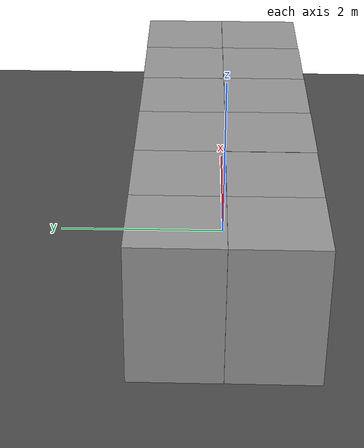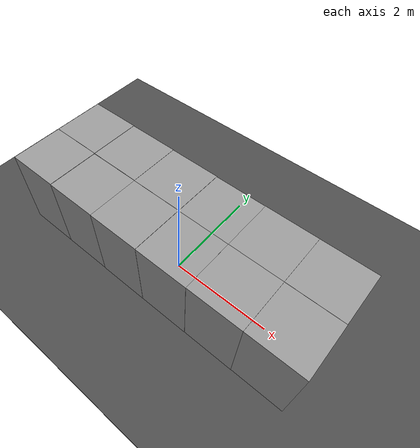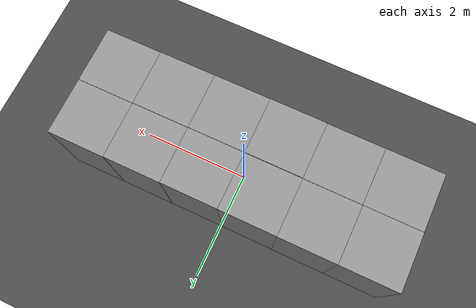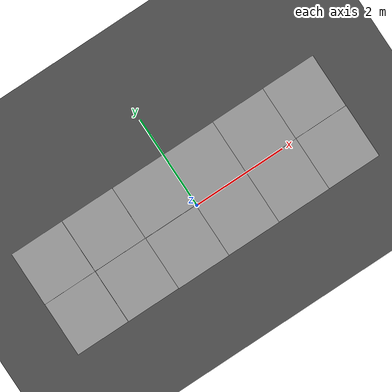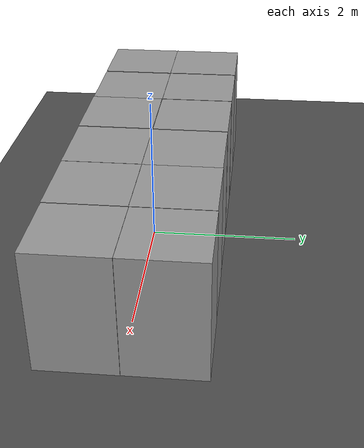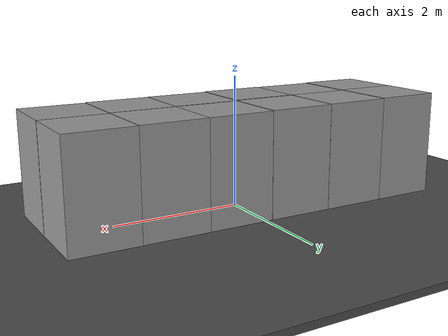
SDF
<sdf version="1.6">
 <world name="default">
  <light name="sun" type="directional">
   <cast_shadows>0</cast_shadows>
   <pose>0 0 10 0 -0 0</pose>
   <diffuse>0.8 0.8 0.8 1</diffuse>
   <specular>0.2 0.2 0.2 1</specular>
   <attenuation>
    <range>1000</range>
    <constant>0.9</constant>
    <linear>0.01</linear>
    <quadratic>0.001</quadratic>
   </attenuation>
   <direction>-0.5 0.1 -0.9</direction>
  </light>
  <model name="ground_plane">
   <static>1</static>
   <link name="link">
    <collision name="collision">
     <geometry><plane><normal>0 0 1</normal><size>100 100</size></plane></geometry>
     <surface><friction><ode><mu>100</mu><mu2>50</mu2></ode></friction></surface>
    </collision>
    <visual name="visual">
     <cast_shadows>0</cast_shadows>
     <geometry><plane><normal>0 0 1</normal><size>100 100</size></plane></geometry>
     <material>
      <script><uri>file://media/materials/scripts/gazebo.material</uri><name>Gazebo/Grey</name></script>
     </material>
    </visual>
   </link>
  </model>
  <gravity>0 0 -9.8</gravity>
  <magnetic_field>6e-06 2.3e-05 -4.2e-05</magnetic_field>
  <atmosphere type="adiabatic"/>
  <physics name="default_physics" default="0" type="ode">
   <max_step_size>0.001</max_step_size>
   <real_time_factor>1</real_time_factor>
   <real_time_update_rate>1000</real_time_update_rate>
  </physics>
  <scene><ambient>0.4 0.4 0.4 1</ambient><background>0.7 0.7 0.7 1</background><shadows>0</shadows></scene>
  <spherical_coordinates>
   <surface_model>EARTH_WGS84</surface_model>
   <latitude_deg>0</latitude_deg>
   <longitude_deg>0</longitude_deg>
   <elevation>0</elevation>
   <heading_deg>0</heading_deg>
  </spherical_coordinates>
  <light name="user_spot_light_0" type="spot">
   <pose>0.007443 -6.99038 1 0 -0 0</pose>
   <diffuse>0.5 0.5 0.5 1</diffuse>
   <specular>0.1 0.1 0.1 1</specular>
   <direction>0 0 -1</direction>
   <attenuation>
    <range>20</range>
    <constant>0.5</constant>
    <linear>0.01</linear>
    <quadratic>0.001</quadratic>
   </attenuation>
   <cast_shadows>0</cast_shadows>
   <spot><inner_angle>0.6</inner_angle><outer_angle>1</outer_angle><falloff>1</falloff></spot>
  </light>
  <light name="user_spot_light_1" type="spot">
   <pose>-0.012876 7.00777 1 0 -0 0</pose>
   <diffuse>0.5 0.5 0.5 1</diffuse>
   <specular>0.1 0.1 0.1 1</specular>
   <direction>0 0 -1</direction>
   <attenuation>
    <range>20</range>
    <constant>0.5</constant>
    <linear>0.01</linear>
    <quadratic>0.001</quadratic>
   </attenuation>
   <cast_shadows>0</cast_shadows>
   <spot><inner_angle>0.6</inner_angle><outer_angle>1</outer_angle><falloff>1</falloff></spot>
  </light>
  <model name="unit_box_1">
   <pose>-1.51636 -0.478613 0.499995 1e-05 -0 -0.001035</pose>
   <link name="link">
    <inertial>
     <mass>1</mass>
     <inertia>
      <ixx>0.166667</ixx>
      <ixy>0</ixy>
      <ixz>0</ixz>
      <iyy>0.166667</iyy>
      <iyz>0</iyz>
      <izz>0.166667</izz>
     </inertia>
    </inertial>
    <collision name="collision"><geometry><box><size>1 1 2.28231</size></box></geometry></collision>
    <visual name="visual">
     <geometry><box><size>1 1 2.28231</size></box></geometry>
     <material>
      <script><name>Gazebo/Grey</name><uri>file://media/materials/scripts/gazebo.material</uri></script>
     </material>
    </visual>
   </link>
  </model>
  <model name="unit_box_2">
   <pose>-0.51633 -0.483919 0.499995 0 -1e-05 -0.001027</pose>
   <link name="link">
    <inertial>
     <mass>1</mass>
     <inertia>
      <ixx>0.166667</ixx>
      <ixy>0</ixy>
      <ixz>0</ixz>
      <iyy>0.166667</iyy>
      <iyz>0</iyz>
      <izz>0.166667</izz>
     </inertia>
    </inertial>
    <collision name="collision"><geometry><box><size>1 1 2.28775</size></box></geometry></collision>
    <visual name="visual">
     <geometry><box><size>1 1 2.28775</size></box></geometry>
     <material>
      <script><name>Gazebo/Grey</name><uri>file://media/materials/scripts/gazebo.material</uri></script>
     </material>
    </visual>
   </link>
  </model>
  <model name="unit_box_3">
   <pose>0.48381 -0.483763 0.5 0 -0 -0.000914</pose>
   <link name="link">
    <inertial>
     <mass>1</mass>
     <inertia>
      <ixx>0.166667</ixx>
      <ixy>0</ixy>
      <ixz>0</ixz>
      <iyy>0.166667</iyy>
      <iyz>0</iyz>
      <izz>0.166667</izz>
     </inertia>
    </inertial>
    <collision name="collision"><geometry><box><size>1 1 2.27237</size></box></geometry></collision>
    <visual name="visual">
     <geometry><box><size>1 1 2.27237</size></box></geometry>
     <material>
      <script><name>Gazebo/Grey</name><uri>file://media/materials/scripts/gazebo.material</uri></script>
     </material>
    </visual>
   </link>
  </model>
  <model name="unit_box_4">
   <pose>1.48384 -0.481696 0.5 -0 -0 -0.000916</pose>
   <link name="link">
    <inertial>
     <mass>1</mass>
     <inertia>
      <ixx>0.166667</ixx>
      <ixy>0</ixy>
      <ixz>0</ixz>
      <iyy>0.166667</iyy>
      <iyz>0</iyz>
      <izz>0.166667</izz>
     </inertia>
    </inertial>
    <collision name="collision"><geometry><box><size>1 1 2.26924</size></box></geometry></collision>
    <visual name="visual">
     <geometry><box><size>1 1 2.26924</size></box></geometry>
     <material>
      <script><name>Gazebo/Grey</name><uri>file://media/materials/scripts/gazebo.material</uri></script>
     </material>
    </visual>
   </link>
  </model>
  <model name="unit_box">
   <pose>2.4839 -0.479384 0.5 0 0 -0.000933</pose>
   <link name="link">
    <inertial>
     <mass>1</mass>
     <inertia>
      <ixx>0.166667</ixx>
      <ixy>0</ixy>
      <ixz>0</ixz>
      <iyy>0.166667</iyy>
      <iyz>0</iyz>
      <izz>0.166667</izz>
     </inertia>
    </inertial>
    <collision name="collision"><geometry><box><size>1 1 2.25716</size></box></geometry></collision>
    <visual name="visual">
     <geometry><box><size>1 1 2.25716</size></box></geometry>
     <material>
      <script><name>Gazebo/Grey</name><uri>file://media/materials/scripts/gazebo.material</uri></script>
     </material>
    </visual>
   </link>
  </model>
  <model name="unit_box_0">
   <pose>2.4824 0.522542 0.499995 1e-05 -0 -0.001048</pose>
   <link name="link">
    <inertial>
     <mass>1</mass>
     <inertia>
      <ixx>0.166667</ixx>
      <ixy>0</ixy>
      <ixz>0</ixz>
      <iyy>0.166667</iyy>
      <iyz>0</iyz>
      <izz>0.166667</izz>
     </inertia>
    </inertial>
    <collision name="collision"><geometry><box><size>1 1 2.25531</size></box></geometry></collision>
    <visual name="visual">
     <geometry><box><size>1 1 2.25531</size></box></geometry>
     <material>
      <script><name>Gazebo/Grey</name><uri>file://media/materials/scripts/gazebo.material</uri></script>
     </material>
    </visual>
   </link>
  </model>
  <model name="unit_box_5">
   <pose>1.48234 0.519804 0.499995 -1e-05 0 -0.00111</pose>
   <link name="link">
    <inertial>
     <mass>1</mass>
     <inertia>
      <ixx>0.166667</ixx>
      <ixy>0</ixy>
      <ixz>0</ixz>
      <iyy>0.166667</iyy>
      <iyz>0</iyz>
      <izz>0.166667</izz>
     </inertia>
    </inertial>
    <collision name="collision"><geometry><box><size>1 1 2.2642</size></box></geometry></collision>
    <visual name="visual">
     <geometry><box><size>1 1 2.2642</size></box></geometry>
     <material>
      <script><name>Gazebo/Grey</name><uri>file://media/materials/scripts/gazebo.material</uri></script>
     </material>
    </visual>
   </link>
  </model>
  <model name="unit_box_6">
   <pose>0.482334 0.51718 0.499995 1e-05 -0 -0.00111</pose>
   <link name="link">
    <inertial>
     <mass>1</mass>
     <inertia>
      <ixx>0.166667</ixx>
      <ixy>0</ixy>
      <ixz>0</ixz>
      <iyy>0.166667</iyy>
      <iyz>0</iyz>
      <izz>0.166667</izz>
     </inertia>
    </inertial>
    <collision name="collision"><geometry><box><size>1 1 2.26393</size></box></geometry></collision>
    <visual name="visual">
     <geometry><box><size>1 1 2.26393</size></box></geometry>
     <material>
      <script><name>Gazebo/Grey</name><uri>file://media/materials/scripts/gazebo.material</uri></script>
     </material>
    </visual>
   </link>
  </model>
  <model name="unit_box_7">
   <pose>-0.517668 0.520378 0.5 0 -1e-06 -0.001113</pose>
   <link name="link">
    <inertial>
     <mass>1</mass>
     <inertia>
      <ixx>0.166667</ixx>
      <ixy>0</ixy>
      <ixz>0</ixz>
      <iyy>0.166667</iyy>
      <iyz>0</iyz>
      <izz>0.166667</izz>
     </inertia>
    </inertial>
    <collision name="collision"><geometry><box><size>1 1 2.27822</size></box></geometry></collision>
    <visual name="visual">
     <geometry><box><size>1 1 2.27822</size></box></geometry>
     <material>
      <script><name>Gazebo/Grey</name><uri>file://media/materials/scripts/gazebo.material</uri></script>
     </material>
    </visual>
   </link>
  </model>
  <model name="unit_box_8">
   <pose>-1.51767 0.523899 0.5 0 0 -0.001114</pose>
   <link name="link">
    <inertial>
     <mass>1</mass>
     <inertia>
      <ixx>0.166667</ixx>
      <ixy>0</ixy>
      <ixz>0</ixz>
      <iyy>0.166667</iyy>
      <iyz>0</iyz>
      <izz>0.166667</izz>
     </inertia>
    </inertial>
    <collision name="collision"><geometry><box><size>1 1 2.28667</size></box></geometry></collision>
    <visual name="visual">
     <geometry><box><size>1 1 2.28667</size></box></geometry>
     <material>
      <script><name>Gazebo/Grey</name><uri>file://media/materials/scripts/gazebo.material</uri></script>
     </material>
    </visual>
   </link>
  </model>
  <model name="unit_box_9">
   <pose>-2.51768 0.524601 0.5 0 0 -0.001116</pose>
   <link name="link">
    <inertial>
     <mass>1</mass>
     <inertia>
      <ixx>0.166667</ixx>
      <ixy>0</ixy>
      <ixz>0</ixz>
      <iyy>0.166667</iyy>
      <iyz>0</iyz>
      <izz>0.166667</izz>
     </inertia>
    </inertial>
    <collision name="collision"><geometry><box><size>1 1 2.30062</size></box></geometry></collision>
    <visual name="visual">
     <geometry><box><size>1 1 2.30062</size></box></geometry>
     <material>
      <script><name>Gazebo/Grey</name><uri>file://media/materials/scripts/gazebo.material</uri></script>
     </material>
    </visual>
   </link>
  </model>
  <model name="unit_box_10">
   <pose>-2.5164 -0.476235 0.5 0 0 -0.000963</pose>
   <link name="link">
    <inertial>
     <mass>1</mass>
     <inertia>
      <ixx>0.166667</ixx>
      <ixy>0</ixy>
      <ixz>0</ixz>
      <iyy>0.166667</iyy>
      <iyz>0</iyz>
      <izz>0.166667</izz>
     </inertia>
    </inertial>
    <collision name="collision"><geometry><box><size>1 1 2.29934</size></box></geometry></collision>
    <visual name="visual">
     <geometry><box><size>1 1 2.29934</size></box></geometry>
     <material>
      <script><name>Gazebo/Grey</name><uri>file://media/materials/scripts/gazebo.material</uri></script>
     </material>
    </visual>
   </link>
  </model>
  <model name="asphalt_plane">
   <static>1</static>
   <link name="link">
    <collision name="collision"><geometry><box><size>20 20 0.1</size></box></geometry></collision>
    <visual name="visual">
     <cast_shadows>0</cast_shadows>
     <geometry><box><size>20 20 0.1</size></box></geometry>
     <material>
      <script>
       <uri>model://asphalt_plane/materials/scripts</uri>
       <uri>model://asphalt_plane/materials/textures</uri>
       <name>vrc/asphalt</name>
      </script>
     </material>
    </visual>
   </link>
  </model>
 </world>
</sdf>
